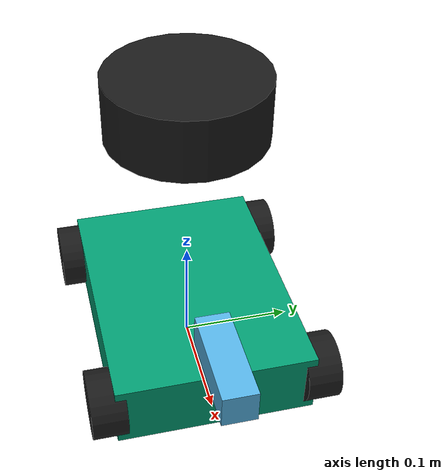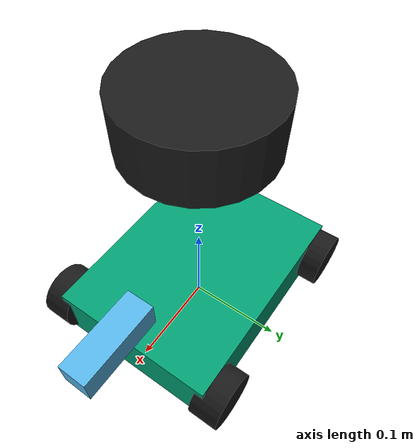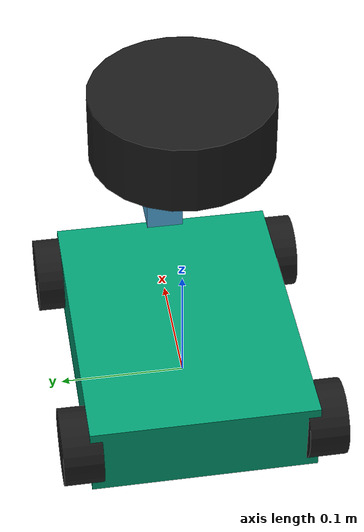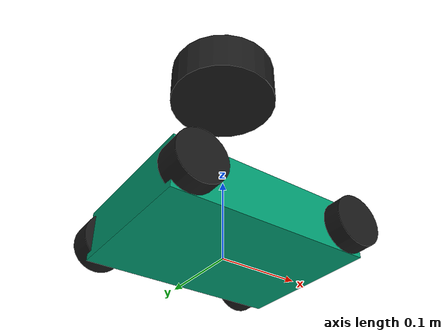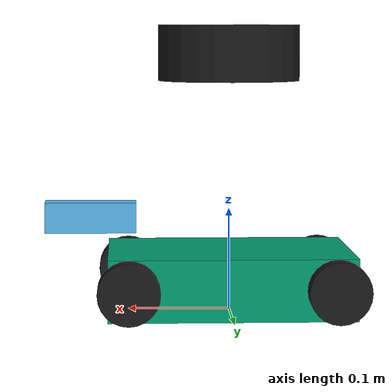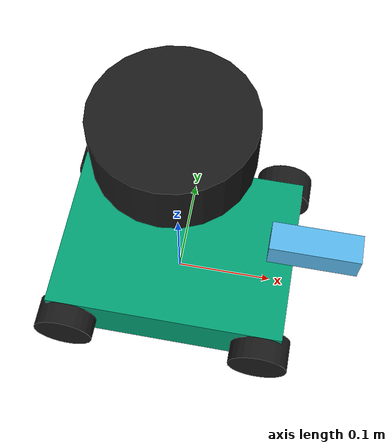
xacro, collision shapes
<?xml version="1.0"?>
<robot name="sar_robot" xmlns:xacro="http://wiki.ros.org/xacro">

  <xacro:arg name="use_sim" default="false" />
  <xacro:arg name="mock" default="false" />
  <xacro:arg name="baud_rate" default="115200" />
  <xacro:arg name="device" default="/dev/ttyACM0" />
  <xacro:arg name="namespace" default="" />
  <xacro:arg name="controllers_config"
             default="$(find sar_control)/config/controllers.yaml" />

  <xacro:include filename="$(find sar_description)/urdf/base/body.urdf.xacro" />
  <xacro:include filename="$(find sar_description)/urdf/base/wheel.urdf.xacro" />
  <xacro:include filename="$(find sar_description)/urdf/control/ros2_control.urdf.xacro" />
  <xacro:include filename="$(find sar_description)/urdf/sensors/rplidar.urdf.xacro" />
  <xacro:include filename="$(find sar_description)/urdf/sensors/realsense.urdf.xacro" />

  <xacro:property name="wheel_radius" value="0.03" />
  <xacro:property name="wheel_separation_x" value="0.200" />
  <xacro:property name="wheel_separation_y" value="0.190" />

  <xacro:body wheel_radius="${wheel_radius}" />

  <xacro:wheel side="fl" wheel_radius="${wheel_radius}"
    x="${wheel_separation_x / 2}" y="${wheel_separation_y / 2}"
    use_sim="$(arg use_sim)" variant="b" fdir="1 -1 0" />
  <xacro:wheel side="fr" wheel_radius="${wheel_radius}"
    x="${wheel_separation_x / 2}" y="${-wheel_separation_y / 2}"
    use_sim="$(arg use_sim)" variant="a" fdir="1 1 0" />
  <xacro:wheel side="rl" wheel_radius="${wheel_radius}"
    x="${-wheel_separation_x / 2}" y="${wheel_separation_y / 2}"
    use_sim="$(arg use_sim)" variant="a" fdir="1 1 0" />
  <xacro:wheel side="rr" wheel_radius="${wheel_radius}"
    x="${-wheel_separation_x / 2}" y="${-wheel_separation_y / 2}"
    use_sim="$(arg use_sim)" variant="b" fdir="1 -1 0" />

  <xacro:rplidar x="0.0" y="0.0" z="0.14" />
  <xacro:realsense x="0.1375" y="0" z="0.0625" />

  <xacro:sar_ros2_control use_sim="$(arg use_sim)" mock="$(arg mock)"
    baud_rate="$(arg baud_rate)" device="$(arg device)" />

  <xacro:if value="$(arg use_sim)">
    <xacro:include filename="$(find sar_description)/urdf/gazebo.urdf.xacro" />
    <xacro:sar_gazebo controllers_config="$(arg controllers_config)"
      namespace="$(arg namespace)" />
  </xacro:if>

</robot>

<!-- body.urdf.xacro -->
<robot xmlns:xacro="http://wiki.ros.org/xacro">

  <xacro:macro name="body" params="wheel_radius">

    <link name="base_link" />

    <link name="base_footprint" />

    <joint name="base_to_footprint" type="fixed">
      <origin xyz="0 0 0" rpy="0.0 0.0 0.0" />
      <parent link="base_link" />
      <child link="base_footprint" />
    </joint>

    <joint name="base_to_body_joint" type="fixed">
      <origin xyz="0 0 ${wheel_radius}" rpy="0.0 0.0 0.0" />
      <parent link="base_link" />
      <child link="body_link" />
    </joint>

    <link name="body_link">
    <visual name="base_visual">
      <origin xyz="0.115 -0.0875 0" rpy="0 0 0"/>
      <geometry>
        <mesh filename="package://sar_description/meshes/sar_body.dae"
              scale="0.001 0.001 0.001"/>
      </geometry>
    </visual>

      <collision>
        <geometry>
          <box size="0.240 0.178 0.060" />
        </geometry>
      </collision>

      <inertial>
        <mass value="3.5" />
        <inertia ixx="0.01393" ixy="0.0" ixz="0.0"
                               iyy="0.01081" iyz="0.0"
                                             izz="0.02048" />
      </inertial>
    </link>

    <joint name="body_to_imu_joint" type="fixed">
      <origin xyz="0.0 0.0 0.0" rpy="0.0 0.0 0.0" />
      <parent link="body_link" />
      <child link="imu_link" />
    </joint>

    <link name="imu_link" />

  </xacro:macro>

</robot>

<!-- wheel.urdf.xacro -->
<robot xmlns:xacro="http://wiki.ros.org/xacro">

  <xacro:macro name="wheel" params="side wheel_radius x y use_sim:=false variant:=a fdir:='1 1 0'">

    <xacro:if value="${use_sim}">
      <xacro:property name="wheel_thickness" value="0.05" />
    </xacro:if>
    <xacro:unless value="${use_sim}">
      <xacro:property name="wheel_thickness" value="0.031" />
    </xacro:unless>
    <xacro:property name="wheel_mass" value="0.4" />
    <xacro:property name="mecanum_mesh_scale" value="${wheel_radius / 0.05}" />

    <joint name="${side}_wheel_joint" type="continuous">
      <parent link="body_link" />
      <child link="${side}_wheel_link" />
      <origin xyz="${x} ${y} 0.0" rpy="0.0 0.0 0.0" />
      <axis xyz="0.0 1.0 0.0" />
      <limit effort="1.5" velocity="30.0" />
      <dynamics damping="0.001" friction="0.001" />
    </joint>

    <link name="${side}_wheel_link">
      <visual>
        <xacro:if value="${use_sim}">
          <geometry>
            <mesh filename="package://rosbot_description/meshes/rosbot_xl/mecanum_${variant}.dae"
                  scale="${mecanum_mesh_scale} ${mecanum_mesh_scale} ${mecanum_mesh_scale}"/>
          </geometry>
          <origin xyz="0.0 0.0 0.0" rpy="0.0 0.0 0.0" />
        </xacro:if>
        <xacro:unless value="${use_sim}">
          <geometry>
            <mesh filename="package://sar_description/meshes/wheel.dae"
                  scale="0.0011 0.0011 0.0011"/>
          </geometry>
          <origin xyz="-0.07 -0.015 -0.022" rpy="0.0 0.0 ${pi/2}" />
          <material name="wheel_color">
            <color rgba="0.1 0.1 0.1 1.0" />
          </material>
        </xacro:unless>
      </visual>

      <collision>
        <geometry>
          <cylinder radius="${wheel_radius}" length="${wheel_thickness}" />
        </geometry>
        <origin xyz="0.0 0.0 0.0" rpy="${pi/2} 0.0 0.0" />
      </collision>

      <inertial>
        <mass value="${wheel_mass}" />
        <xacro:if value="${use_sim}">
          <inertia ixx="0.0003145" ixy="0.0" ixz="0.0"
                                   iyy="0.0004561" iyz="0.0"
                                                   izz="0.0003145" />
        </xacro:if>
        <xacro:unless value="${use_sim}">
          <inertia ixx="0.000228454" ixy="-0.000015215" ixz="-0.000043405"
                                    iyy="0.000209819" iyz="-0.000066187"
                                                     izz="0.000044202" />
        </xacro:unless>
      </inertial>
    </link>

    <xacro:if value="${use_sim}">
      <gazebo reference="${side}_wheel_link" xmlns:ignition="http://ignitionrobotics.org/schema">
        <collision>
          <surface>
            <friction>
              <ode>
                <mu>0.8</mu>
                <mu2>0.2</mu2>
                <slip1>0.035</slip1>
                <slip2>0</slip2>
                <fdir1 ignition:expressed_in="base_link">${fdir}</fdir1>
              </ode>
            </friction>
          </surface>
        </collision>
      </gazebo>
    </xacro:if>

  </xacro:macro>

</robot>

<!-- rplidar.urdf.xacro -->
<robot xmlns:xacro="http://wiki.ros.org/xacro">

  <xacro:macro name="rplidar" params="x y z">
    <joint name="rplidar_joint" type="fixed">
      <parent link="body_link" />
      <child link="laser_frame" />
      <origin xyz="${x} ${y} ${z}" rpy="${pi} ${pi} 0.0" />
    </joint>

    <link name="laser_frame">
      <visual>
        <geometry>
          <mesh filename="package://sar_description/meshes/rplidar.dae" scale="0.001 0.001 0.001"/>
        </geometry>
        <origin xyz="-0.07 0.015 -0.036" rpy="0 0.0 ${pi}" />
        <material name="rplidar_color">
          <color rgba="0.1 0.1 0.1 1.0" />
        </material>
      </visual>

      <collision>
        <geometry>
          <cylinder radius="0.07" length="0.055" />
        </geometry>
        <origin xyz="0.0 0.0 0.085" rpy="0.0 0.0 0.0" />
      </collision>
	  <inertial>
        <mass value="0.074" />
        <inertia ixx="0.000083583" ixy="0.000110656" ixz="-0.000052990"
                                  iyy="0.000323563" iyz="0.000021981"
                                                   izz="0.000345389" />
      </inertial>
    </link>

  </xacro:macro>

</robot>

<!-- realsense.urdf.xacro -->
<robot xmlns:xacro="http://wiki.ros.org/xacro">

  <xacro:macro name="realsense" params="x y z">

  <joint name="realsense_joint" type="fixed">
    <parent link="body_link"/>
    <child link="camera_frame"/>
    <origin xyz="${x} ${y} ${z}" rpy="0 0 0"/>
  </joint>

  <link name="camera_frame">

    <visual>
      <origin xyz="0 0 0" rpy="1.5708 0 1.5708"/>
      <geometry>
        <mesh filename="package://sar_description/meshes/realsense.dae"
              scale="0.001 0.001 0.001"/>
      </geometry>
    </visual>
    <collision>
      <origin xyz="0 0 0" rpy="0 0 0"/>
      <geometry>
        <box size="0.09 0.03 0.03"/>
      </geometry>
    </collision>
    <inertial>
		<mass value="0.048" />
		<inertia ixx="0.000007287" ixy="0.000000001" ixz="-0.0"
		                          iyy="0.000030308" iyz="0.000000021"
		                                           izz="0.000033416" />
	</inertial>
  </link>

  <joint name="camera_optical_joint" type="fixed">
    <parent link="camera_frame"/>
    <child link="camera_optical_frame"/>
    <origin xyz="0 0 0" rpy="-1.5708 0 -1.5708"/>
  </joint>

  <link name="camera_optical_frame"/>

  </xacro:macro>

</robot>
